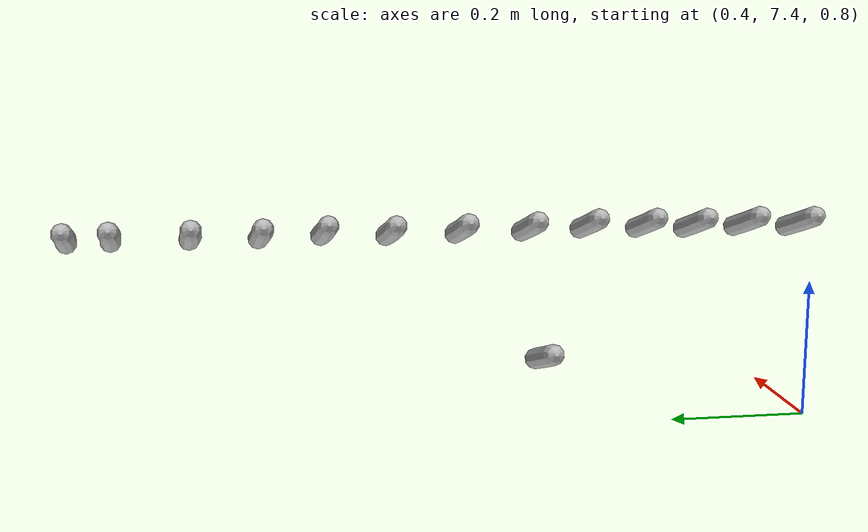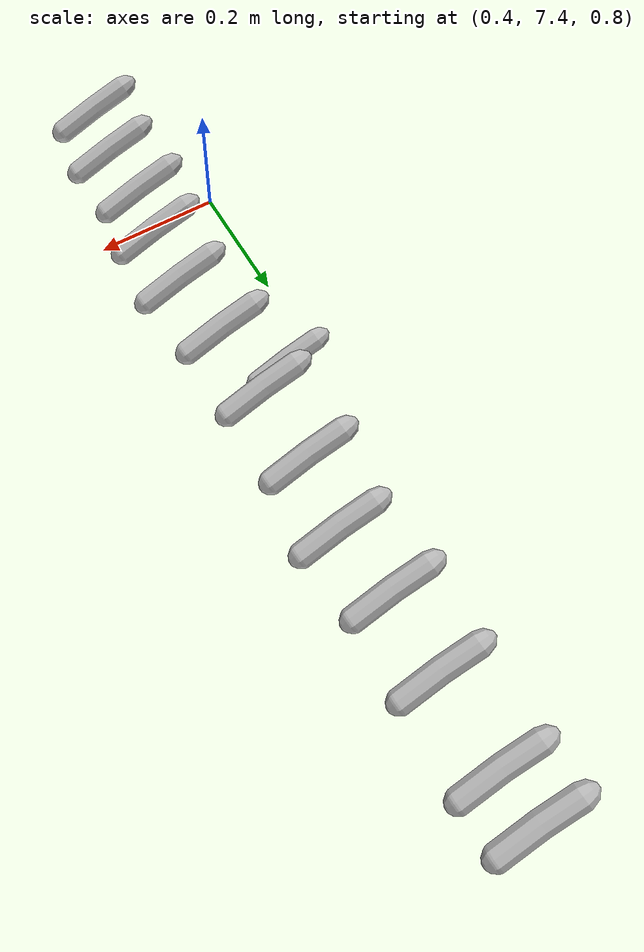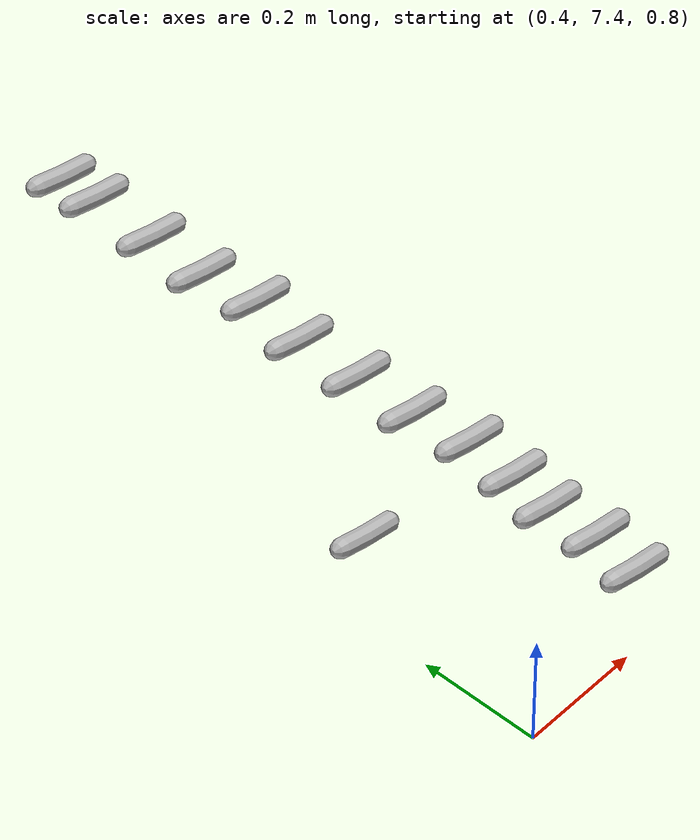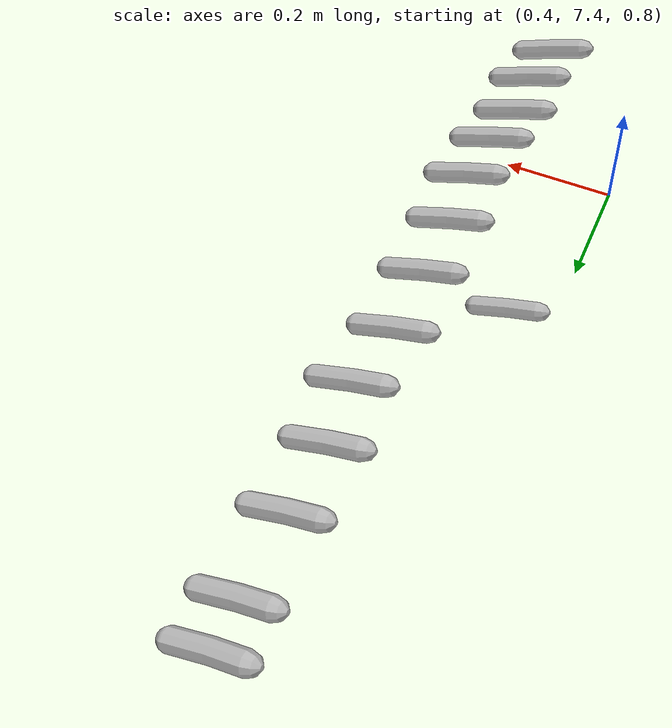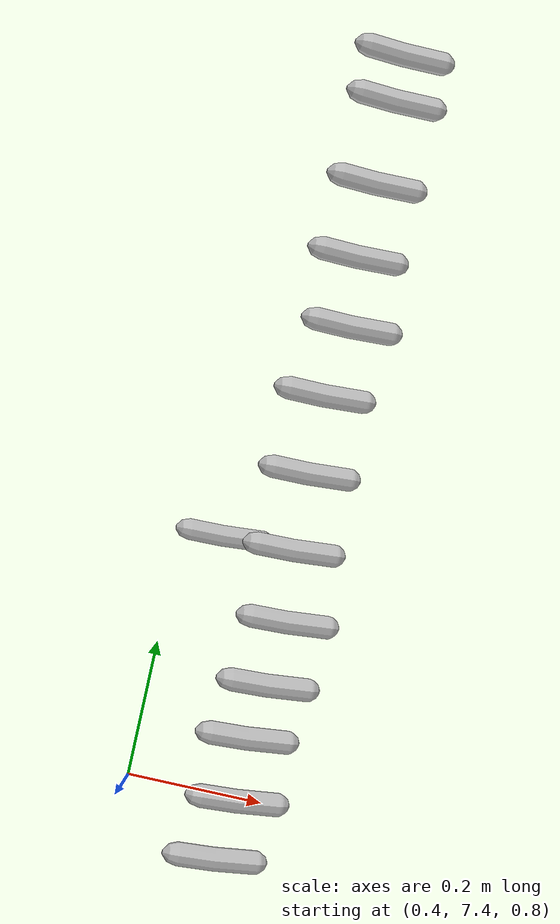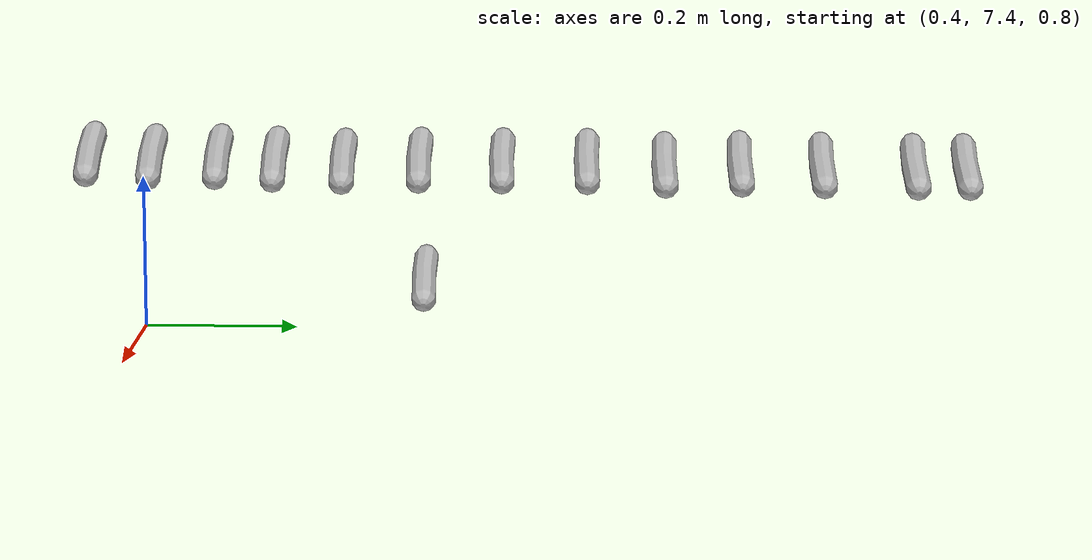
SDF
<sdf version="1.6">
 <world name="default">
  <model name="cucumber">
   <link name="link_0">
    <inertial>
     <mass>1</mass>
     <inertia>
      <ixx>0.166667</ixx>
      <ixy>0</ixy>
      <ixz>0</ixz>
      <iyy>0.166667</iyy>
      <iyz>0</iyz>
      <izz>0.166667</izz>
     </inertia>
    </inertial>
    <visual name="visual">
     <geometry><mesh><uri>model://cucumber/meshes/cucumber.dae</uri><scale>1 1 1</scale></mesh></geometry>
     <cast_shadows>0</cast_shadows>
    </visual>
    <collision name="collision">
     <geometry><mesh><uri>model://cucumber/meshes/cucumber.dae</uri><scale>1 1 1</scale></mesh></geometry>
     <surface>
      <friction>
       <ode><mu>1</mu><mu2>1</mu2><fdir1>0 0 0</fdir1><slip1>0</slip1><slip2>0</slip2></ode>
       <torsional>
        <coefficient>1</coefficient>
        <patch_radius>0</patch_radius>
        <surface_radius>0</surface_radius>
        <use_patch_radius>1</use_patch_radius>
        <ode><slip>0</slip></ode>
       </torsional>
      </friction>
      <bounce><restitution_coefficient>0</restitution_coefficient><threshold>1e+06</threshold></bounce>
      <contact>
       <collide_without_contact>0</collide_without_contact>
       <collide_without_contact_bitmask>1</collide_without_contact_bitmask>
       <collide_bitmask>1</collide_bitmask>
       <ode>
        <soft_cfm>0</soft_cfm>
        <soft_erp>0.2</soft_erp>
        <kp>1e+13</kp>
        <kd>1</kd>
        <max_vel>0.01</max_vel>
        <min_depth>0</min_depth>
       </ode>
       <bullet>
        <split_impulse>1</split_impulse>
        <split_impulse_penetration_threshold>-0.01</split_impulse_penetration_threshold>
        <soft_cfm>0</soft_cfm>
        <soft_erp>0.2</soft_erp>
        <kp>1e+13</kp>
        <kd>1</kd>
       </bullet>
      </contact>
     </surface>
    </collision>
   </link>
   <static>1</static>
   <pose>0.588443 7.57958 1.04625 0.305162 0 1.61482</pose>
  </model>
  <model name="cucumber_clone">
   <link name="link_0">
    <inertial>
     <mass>1</mass>
     <inertia>
      <ixx>0.166667</ixx>
      <ixy>0</ixy>
      <ixz>0</ixz>
      <iyy>0.166667</iyy>
      <iyz>0</iyz>
      <izz>0.166667</izz>
     </inertia>
    </inertial>
    <visual name="visual">
     <geometry><mesh><uri>model://cucumber/meshes/cucumber.dae</uri><scale>1 1 1</scale></mesh></geometry>
     <cast_shadows>0</cast_shadows>
    </visual>
    <collision name="collision">
     <geometry><mesh><uri>model://cucumber/meshes/cucumber.dae</uri><scale>1 1 1</scale></mesh></geometry>
     <surface>
      <friction>
       <ode><mu>1</mu><mu2>1</mu2><fdir1>0 0 0</fdir1><slip1>0</slip1><slip2>0</slip2></ode>
       <torsional>
        <coefficient>1</coefficient>
        <patch_radius>0</patch_radius>
        <surface_radius>0</surface_radius>
        <use_patch_radius>1</use_patch_radius>
        <ode><slip>0</slip></ode>
       </torsional>
      </friction>
      <bounce><restitution_coefficient>0</restitution_coefficient><threshold>1e+06</threshold></bounce>
      <contact>
       <collide_without_contact>0</collide_without_contact>
       <collide_without_contact_bitmask>1</collide_without_contact_bitmask>
       <collide_bitmask>1</collide_bitmask>
       <ode>
        <soft_cfm>0</soft_cfm>
        <soft_erp>0.2</soft_erp>
        <kp>1e+13</kp>
        <kd>1</kd>
        <max_vel>0.01</max_vel>
        <min_depth>0</min_depth>
       </ode>
       <bullet>
        <split_impulse>1</split_impulse>
        <split_impulse_penetration_threshold>-0.01</split_impulse_penetration_threshold>
        <soft_cfm>0</soft_cfm>
        <soft_erp>0.2</soft_erp>
        <kp>1e+13</kp>
        <kd>1</kd>
       </bullet>
      </contact>
     </surface>
    </collision>
   </link>
   <static>1</static>
   <pose>0.576521 7.5056 1.04625 0.305162 0 1.61482</pose>
  </model>
  <model name="cucumber_clone_0">
   <link name="link_0">
    <inertial>
     <mass>1</mass>
     <inertia>
      <ixx>0.166667</ixx>
      <ixy>0</ixy>
      <ixz>0</ixz>
      <iyy>0.166667</iyy>
      <iyz>0</iyz>
      <izz>0.166667</izz>
     </inertia>
    </inertial>
    <visual name="visual">
     <geometry><mesh><uri>model://cucumber/meshes/cucumber.dae</uri><scale>1 1 1</scale></mesh></geometry>
     <cast_shadows>0</cast_shadows>
    </visual>
    <collision name="collision">
     <geometry><mesh><uri>model://cucumber/meshes/cucumber.dae</uri><scale>1 1 1</scale></mesh></geometry>
     <surface>
      <friction>
       <ode><mu>1</mu><mu2>1</mu2><fdir1>0 0 0</fdir1><slip1>0</slip1><slip2>0</slip2></ode>
       <torsional>
        <coefficient>1</coefficient>
        <patch_radius>0</patch_radius>
        <surface_radius>0</surface_radius>
        <use_patch_radius>1</use_patch_radius>
        <ode><slip>0</slip></ode>
       </torsional>
      </friction>
      <bounce><restitution_coefficient>0</restitution_coefficient><threshold>1e+06</threshold></bounce>
      <contact>
       <collide_without_contact>0</collide_without_contact>
       <collide_without_contact_bitmask>1</collide_without_contact_bitmask>
       <collide_bitmask>1</collide_bitmask>
       <ode>
        <soft_cfm>0</soft_cfm>
        <soft_erp>0.2</soft_erp>
        <kp>1e+13</kp>
        <kd>1</kd>
        <max_vel>0.01</max_vel>
        <min_depth>0</min_depth>
       </ode>
       <bullet>
        <split_impulse>1</split_impulse>
        <split_impulse_penetration_threshold>-0.01</split_impulse_penetration_threshold>
        <soft_cfm>0</soft_cfm>
        <soft_erp>0.2</soft_erp>
        <kp>1e+13</kp>
        <kd>1</kd>
       </bullet>
      </contact>
     </surface>
    </collision>
   </link>
   <static>1</static>
   <pose>0.581048 7.42202 1.04625 0.305162 0 1.61482</pose>
  </model>
  <model name="cucumber_clone_1">
   <link name="link_0">
    <inertial>
     <mass>1</mass>
     <inertia>
      <ixx>0.166667</ixx>
      <ixy>0</ixy>
      <ixz>0</ixz>
      <iyy>0.166667</iyy>
      <iyz>0</iyz>
      <izz>0.166667</izz>
     </inertia>
    </inertial>
    <visual name="visual">
     <geometry><mesh><uri>model://cucumber/meshes/cucumber.dae</uri><scale>1 1 1</scale></mesh></geometry>
     <cast_shadows>0</cast_shadows>
    </visual>
    <collision name="collision">
     <geometry><mesh><uri>model://cucumber/meshes/cucumber.dae</uri><scale>1 1 1</scale></mesh></geometry>
     <surface>
      <friction>
       <ode><mu>1</mu><mu2>1</mu2><fdir1>0 0 0</fdir1><slip1>0</slip1><slip2>0</slip2></ode>
       <torsional>
        <coefficient>1</coefficient>
        <patch_radius>0</patch_radius>
        <surface_radius>0</surface_radius>
        <use_patch_radius>1</use_patch_radius>
        <ode><slip>0</slip></ode>
       </torsional>
      </friction>
      <bounce><restitution_coefficient>0</restitution_coefficient><threshold>1e+06</threshold></bounce>
      <contact>
       <collide_without_contact>0</collide_without_contact>
       <collide_without_contact_bitmask>1</collide_without_contact_bitmask>
       <collide_bitmask>1</collide_bitmask>
       <ode>
        <soft_cfm>0</soft_cfm>
        <soft_erp>0.2</soft_erp>
        <kp>1e+13</kp>
        <kd>1</kd>
        <max_vel>0.01</max_vel>
        <min_depth>0</min_depth>
       </ode>
       <bullet>
        <split_impulse>1</split_impulse>
        <split_impulse_penetration_threshold>-0.01</split_impulse_penetration_threshold>
        <soft_cfm>0</soft_cfm>
        <soft_erp>0.2</soft_erp>
        <kp>1e+13</kp>
        <kd>1</kd>
       </bullet>
      </contact>
     </surface>
    </collision>
   </link>
   <static>1</static>
   <pose>0.568139 7.34125 1.04625 0.305162 0 1.61482</pose>
  </model>
  <model name="cucumber_clone_2">
   <link name="link_0">
    <inertial>
     <mass>1</mass>
     <inertia>
      <ixx>0.166667</ixx>
      <ixy>0</ixy>
      <ixz>0</ixz>
      <iyy>0.166667</iyy>
      <iyz>0</iyz>
      <izz>0.166667</izz>
     </inertia>
    </inertial>
    <visual name="visual">
     <geometry><mesh><uri>model://cucumber/meshes/cucumber.dae</uri><scale>1 1 1</scale></mesh></geometry>
     <cast_shadows>0</cast_shadows>
    </visual>
    <collision name="collision">
     <geometry><mesh><uri>model://cucumber/meshes/cucumber.dae</uri><scale>1 1 1</scale></mesh></geometry>
     <surface>
      <friction>
       <ode><mu>1</mu><mu2>1</mu2><fdir1>0 0 0</fdir1><slip1>0</slip1><slip2>0</slip2></ode>
       <torsional>
        <coefficient>1</coefficient>
        <patch_radius>0</patch_radius>
        <surface_radius>0</surface_radius>
        <use_patch_radius>1</use_patch_radius>
        <ode><slip>0</slip></ode>
       </torsional>
      </friction>
      <bounce><restitution_coefficient>0</restitution_coefficient><threshold>1e+06</threshold></bounce>
      <contact>
       <collide_without_contact>0</collide_without_contact>
       <collide_without_contact_bitmask>1</collide_without_contact_bitmask>
       <collide_bitmask>1</collide_bitmask>
       <ode>
        <soft_cfm>0</soft_cfm>
        <soft_erp>0.2</soft_erp>
        <kp>1e+13</kp>
        <kd>1</kd>
        <max_vel>0.01</max_vel>
        <min_depth>0</min_depth>
       </ode>
       <bullet>
        <split_impulse>1</split_impulse>
        <split_impulse_penetration_threshold>-0.01</split_impulse_penetration_threshold>
        <soft_cfm>0</soft_cfm>
        <soft_erp>0.2</soft_erp>
        <kp>1e+13</kp>
        <kd>1</kd>
       </bullet>
      </contact>
     </surface>
    </collision>
   </link>
   <static>1</static>
   <pose>0.596197 7.6669 1.04625 0.305162 0 1.61482</pose>
  </model>
  <model name="cucumber_clone_3">
   <link name="link_0">
    <inertial>
     <mass>1</mass>
     <inertia>
      <ixx>0.166667</ixx>
      <ixy>0</ixy>
      <ixz>0</ixz>
      <iyy>0.166667</iyy>
      <iyz>0</iyz>
      <izz>0.166667</izz>
     </inertia>
    </inertial>
    <visual name="visual">
     <geometry><mesh><uri>model://cucumber/meshes/cucumber.dae</uri><scale>1 1 1</scale></mesh></geometry>
     <cast_shadows>0</cast_shadows>
    </visual>
    <collision name="collision">
     <geometry><mesh><uri>model://cucumber/meshes/cucumber.dae</uri><scale>1 1 1</scale></mesh></geometry>
     <surface>
      <friction>
       <ode><mu>1</mu><mu2>1</mu2><fdir1>0 0 0</fdir1><slip1>0</slip1><slip2>0</slip2></ode>
       <torsional>
        <coefficient>1</coefficient>
        <patch_radius>0</patch_radius>
        <surface_radius>0</surface_radius>
        <use_patch_radius>1</use_patch_radius>
        <ode><slip>0</slip></ode>
       </torsional>
      </friction>
      <bounce><restitution_coefficient>0</restitution_coefficient><threshold>1e+06</threshold></bounce>
      <contact>
       <collide_without_contact>0</collide_without_contact>
       <collide_without_contact_bitmask>1</collide_without_contact_bitmask>
       <collide_bitmask>1</collide_bitmask>
       <ode>
        <soft_cfm>0</soft_cfm>
        <soft_erp>0.2</soft_erp>
        <kp>1e+13</kp>
        <kd>1</kd>
        <max_vel>0.01</max_vel>
        <min_depth>0</min_depth>
       </ode>
       <bullet>
        <split_impulse>1</split_impulse>
        <split_impulse_penetration_threshold>-0.01</split_impulse_penetration_threshold>
        <soft_cfm>0</soft_cfm>
        <soft_erp>0.2</soft_erp>
        <kp>1e+13</kp>
        <kd>1</kd>
       </bullet>
      </contact>
     </surface>
    </collision>
   </link>
   <static>1</static>
   <pose>0.584535 7.76238 1.04625 0.305162 0 1.61482</pose>
  </model>
  <model name="cucumber_clone_4">
   <link name="link_0">
    <inertial>
     <mass>1</mass>
     <inertia>
      <ixx>0.166667</ixx>
      <ixy>0</ixy>
      <ixz>0</ixz>
      <iyy>0.166667</iyy>
      <iyz>0</iyz>
      <izz>0.166667</izz>
     </inertia>
    </inertial>
    <visual name="visual">
     <geometry><mesh><uri>model://cucumber/meshes/cucumber.dae</uri><scale>1 1 1</scale></mesh></geometry>
     <cast_shadows>0</cast_shadows>
    </visual>
    <collision name="collision">
     <geometry><mesh><uri>model://cucumber/meshes/cucumber.dae</uri><scale>1 1 1</scale></mesh></geometry>
     <surface>
      <friction>
       <ode><mu>1</mu><mu2>1</mu2><fdir1>0 0 0</fdir1><slip1>0</slip1><slip2>0</slip2></ode>
       <torsional>
        <coefficient>1</coefficient>
        <patch_radius>0</patch_radius>
        <surface_radius>0</surface_radius>
        <use_patch_radius>1</use_patch_radius>
        <ode><slip>0</slip></ode>
       </torsional>
      </friction>
      <bounce><restitution_coefficient>0</restitution_coefficient><threshold>1e+06</threshold></bounce>
      <contact>
       <collide_without_contact>0</collide_without_contact>
       <collide_without_contact_bitmask>1</collide_without_contact_bitmask>
       <collide_bitmask>1</collide_bitmask>
       <ode>
        <soft_cfm>0</soft_cfm>
        <soft_erp>0.2</soft_erp>
        <kp>1e+13</kp>
        <kd>1</kd>
        <max_vel>0.01</max_vel>
        <min_depth>0</min_depth>
       </ode>
       <bullet>
        <split_impulse>1</split_impulse>
        <split_impulse_penetration_threshold>-0.01</split_impulse_penetration_threshold>
        <soft_cfm>0</soft_cfm>
        <soft_erp>0.2</soft_erp>
        <kp>1e+13</kp>
        <kd>1</kd>
       </bullet>
      </contact>
     </surface>
    </collision>
   </link>
   <static>1</static>
   <pose>0.58295 7.86666 1.04625 0.305162 0 1.61482</pose>
  </model>
  <model name="cucumber_clone_5">
   <link name="link_0">
    <inertial>
     <mass>1</mass>
     <inertia>
      <ixx>0.166667</ixx>
      <ixy>0</ixy>
      <ixz>0</ixz>
      <iyy>0.166667</iyy>
      <iyz>0</iyz>
      <izz>0.166667</izz>
     </inertia>
    </inertial>
    <visual name="visual">
     <geometry><mesh><uri>model://cucumber/meshes/cucumber.dae</uri><scale>1 1 1</scale></mesh></geometry>
     <cast_shadows>0</cast_shadows>
    </visual>
    <collision name="collision">
     <geometry><mesh><uri>model://cucumber/meshes/cucumber.dae</uri><scale>1 1 1</scale></mesh></geometry>
     <surface>
      <friction>
       <ode><mu>1</mu><mu2>1</mu2><fdir1>0 0 0</fdir1><slip1>0</slip1><slip2>0</slip2></ode>
       <torsional>
        <coefficient>1</coefficient>
        <patch_radius>0</patch_radius>
        <surface_radius>0</surface_radius>
        <use_patch_radius>1</use_patch_radius>
        <ode><slip>0</slip></ode>
       </torsional>
      </friction>
      <bounce><restitution_coefficient>0</restitution_coefficient><threshold>1e+06</threshold></bounce>
      <contact>
       <collide_without_contact>0</collide_without_contact>
       <collide_without_contact_bitmask>1</collide_without_contact_bitmask>
       <collide_bitmask>1</collide_bitmask>
       <ode>
        <soft_cfm>0</soft_cfm>
        <soft_erp>0.2</soft_erp>
        <kp>1e+13</kp>
        <kd>1</kd>
        <max_vel>0.01</max_vel>
        <min_depth>0</min_depth>
       </ode>
       <bullet>
        <split_impulse>1</split_impulse>
        <split_impulse_penetration_threshold>-0.01</split_impulse_penetration_threshold>
        <soft_cfm>0</soft_cfm>
        <soft_erp>0.2</soft_erp>
        <kp>1e+13</kp>
        <kd>1</kd>
       </bullet>
      </contact>
     </surface>
    </collision>
   </link>
   <static>1</static>
   <pose>0.580998 7.97345 1.04625 0.305162 0 1.61482</pose>
  </model>
  <model name="cucumber_clone_6">
   <link name="link_0">
    <inertial>
     <mass>1</mass>
     <inertia>
      <ixx>0.166667</ixx>
      <ixy>0</ixy>
      <ixz>0</ixz>
      <iyy>0.166667</iyy>
      <iyz>0</iyz>
      <izz>0.166667</izz>
     </inertia>
    </inertial>
    <visual name="visual">
     <geometry><mesh><uri>model://cucumber/meshes/cucumber.dae</uri><scale>1 1 1</scale></mesh></geometry>
     <cast_shadows>0</cast_shadows>
    </visual>
    <collision name="collision">
     <geometry><mesh><uri>model://cucumber/meshes/cucumber.dae</uri><scale>1 1 1</scale></mesh></geometry>
     <surface>
      <friction>
       <ode><mu>1</mu><mu2>1</mu2><fdir1>0 0 0</fdir1><slip1>0</slip1><slip2>0</slip2></ode>
       <torsional>
        <coefficient>1</coefficient>
        <patch_radius>0</patch_radius>
        <surface_radius>0</surface_radius>
        <use_patch_radius>1</use_patch_radius>
        <ode><slip>0</slip></ode>
       </torsional>
      </friction>
      <bounce><restitution_coefficient>0</restitution_coefficient><threshold>1e+06</threshold></bounce>
      <contact>
       <collide_without_contact>0</collide_without_contact>
       <collide_without_contact_bitmask>1</collide_without_contact_bitmask>
       <collide_bitmask>1</collide_bitmask>
       <ode>
        <soft_cfm>0</soft_cfm>
        <soft_erp>0.2</soft_erp>
        <kp>1e+13</kp>
        <kd>1</kd>
        <max_vel>0.01</max_vel>
        <min_depth>0</min_depth>
       </ode>
       <bullet>
        <split_impulse>1</split_impulse>
        <split_impulse_penetration_threshold>-0.01</split_impulse_penetration_threshold>
        <soft_cfm>0</soft_cfm>
        <soft_erp>0.2</soft_erp>
        <kp>1e+13</kp>
        <kd>1</kd>
       </bullet>
      </contact>
     </surface>
    </collision>
   </link>
   <static>1</static>
   <pose>0.596631 8.07136 1.04625 0.305162 0 1.61482</pose>
  </model>
  <model name="cucumber_clone_7">
   <link name="link_0">
    <inertial>
     <mass>1</mass>
     <inertia>
      <ixx>0.166667</ixx>
      <ixy>0</ixy>
      <ixz>0</ixz>
      <iyy>0.166667</iyy>
      <iyz>0</iyz>
      <izz>0.166667</izz>
     </inertia>
    </inertial>
    <visual name="visual">
     <geometry><mesh><uri>model://cucumber/meshes/cucumber.dae</uri><scale>1 1 1</scale></mesh></geometry>
     <cast_shadows>0</cast_shadows>
    </visual>
    <collision name="collision">
     <geometry><mesh><uri>model://cucumber/meshes/cucumber.dae</uri><scale>1 1 1</scale></mesh></geometry>
     <surface>
      <friction>
       <ode><mu>1</mu><mu2>1</mu2><fdir1>0 0 0</fdir1><slip1>0</slip1><slip2>0</slip2></ode>
       <torsional>
        <coefficient>1</coefficient>
        <patch_radius>0</patch_radius>
        <surface_radius>0</surface_radius>
        <use_patch_radius>1</use_patch_radius>
        <ode><slip>0</slip></ode>
       </torsional>
      </friction>
      <bounce><restitution_coefficient>0</restitution_coefficient><threshold>1e+06</threshold></bounce>
      <contact>
       <collide_without_contact>0</collide_without_contact>
       <collide_without_contact_bitmask>1</collide_without_contact_bitmask>
       <collide_bitmask>1</collide_bitmask>
       <ode>
        <soft_cfm>0</soft_cfm>
        <soft_erp>0.2</soft_erp>
        <kp>1e+13</kp>
        <kd>1</kd>
        <max_vel>0.01</max_vel>
        <min_depth>0</min_depth>
       </ode>
       <bullet>
        <split_impulse>1</split_impulse>
        <split_impulse_penetration_threshold>-0.01</split_impulse_penetration_threshold>
        <soft_cfm>0</soft_cfm>
        <soft_erp>0.2</soft_erp>
        <kp>1e+13</kp>
        <kd>1</kd>
       </bullet>
      </contact>
     </surface>
    </collision>
   </link>
   <static>1</static>
   <pose>0.585042 8.16595 1.04625 0.305162 0 1.61482</pose>
  </model>
  <model name="cucumber_clone_8">
   <link name="link_0">
    <inertial>
     <mass>1</mass>
     <inertia>
      <ixx>0.166667</ixx>
      <ixy>0</ixy>
      <ixz>0</ixz>
      <iyy>0.166667</iyy>
      <iyz>0</iyz>
      <izz>0.166667</izz>
     </inertia>
    </inertial>
    <visual name="visual">
     <geometry><mesh><uri>model://cucumber/meshes/cucumber.dae</uri><scale>1 1 1</scale></mesh></geometry>
     <cast_shadows>0</cast_shadows>
    </visual>
    <collision name="collision">
     <geometry><mesh><uri>model://cucumber/meshes/cucumber.dae</uri><scale>1 1 1</scale></mesh></geometry>
     <surface>
      <friction>
       <ode><mu>1</mu><mu2>1</mu2><fdir1>0 0 0</fdir1><slip1>0</slip1><slip2>0</slip2></ode>
       <torsional>
        <coefficient>1</coefficient>
        <patch_radius>0</patch_radius>
        <surface_radius>0</surface_radius>
        <use_patch_radius>1</use_patch_radius>
        <ode><slip>0</slip></ode>
       </torsional>
      </friction>
      <bounce><restitution_coefficient>0</restitution_coefficient><threshold>1e+06</threshold></bounce>
      <contact>
       <collide_without_contact>0</collide_without_contact>
       <collide_without_contact_bitmask>1</collide_without_contact_bitmask>
       <collide_bitmask>1</collide_bitmask>
       <ode>
        <soft_cfm>0</soft_cfm>
        <soft_erp>0.2</soft_erp>
        <kp>1e+13</kp>
        <kd>1</kd>
        <max_vel>0.01</max_vel>
        <min_depth>0</min_depth>
       </ode>
       <bullet>
        <split_impulse>1</split_impulse>
        <split_impulse_penetration_threshold>-0.01</split_impulse_penetration_threshold>
        <soft_cfm>0</soft_cfm>
        <soft_erp>0.2</soft_erp>
        <kp>1e+13</kp>
        <kd>1</kd>
       </bullet>
      </contact>
     </surface>
    </collision>
   </link>
   <static>1</static>
   <pose>0.588955 8.26844 1.04625 0.305162 0 1.61482</pose>
  </model>
  <model name="cucumber_clone_9">
   <link name="link_0">
    <inertial>
     <mass>1</mass>
     <inertia>
      <ixx>0.166667</ixx>
      <ixy>0</ixy>
      <ixz>0</ixz>
      <iyy>0.166667</iyy>
      <iyz>0</iyz>
      <izz>0.166667</izz>
     </inertia>
    </inertial>
    <visual name="visual">
     <geometry><mesh><uri>model://cucumber/meshes/cucumber.dae</uri><scale>1 1 1</scale></mesh></geometry>
     <cast_shadows>0</cast_shadows>
    </visual>
    <collision name="collision">
     <geometry><mesh><uri>model://cucumber/meshes/cucumber.dae</uri><scale>1 1 1</scale></mesh></geometry>
     <surface>
      <friction>
       <ode><mu>1</mu><mu2>1</mu2><fdir1>0 0 0</fdir1><slip1>0</slip1><slip2>0</slip2></ode>
       <torsional>
        <coefficient>1</coefficient>
        <patch_radius>0</patch_radius>
        <surface_radius>0</surface_radius>
        <use_patch_radius>1</use_patch_radius>
        <ode><slip>0</slip></ode>
       </torsional>
      </friction>
      <bounce><restitution_coefficient>0</restitution_coefficient><threshold>1e+06</threshold></bounce>
      <contact>
       <collide_without_contact>0</collide_without_contact>
       <collide_without_contact_bitmask>1</collide_without_contact_bitmask>
       <collide_bitmask>1</collide_bitmask>
       <ode>
        <soft_cfm>0</soft_cfm>
        <soft_erp>0.2</soft_erp>
        <kp>1e+13</kp>
        <kd>1</kd>
        <max_vel>0.01</max_vel>
        <min_depth>0</min_depth>
       </ode>
       <bullet>
        <split_impulse>1</split_impulse>
        <split_impulse_penetration_threshold>-0.01</split_impulse_penetration_threshold>
        <soft_cfm>0</soft_cfm>
        <soft_erp>0.2</soft_erp>
        <kp>1e+13</kp>
        <kd>1</kd>
       </bullet>
      </contact>
     </surface>
    </collision>
   </link>
   <static>1</static>
   <pose>0.591171 8.38375 1.04625 0.305162 0 1.61482</pose>
  </model>
  <model name="cucumber_clone_10">
   <link name="link_0">
    <inertial>
     <mass>1</mass>
     <inertia>
      <ixx>0.166667</ixx>
      <ixy>0</ixy>
      <ixz>0</ixz>
      <iyy>0.166667</iyy>
      <iyz>0</iyz>
      <izz>0.166667</izz>
     </inertia>
    </inertial>
    <visual name="visual">
     <geometry><mesh><uri>model://cucumber/meshes/cucumber.dae</uri><scale>1 1 1</scale></mesh></geometry>
     <cast_shadows>0</cast_shadows>
    </visual>
    <collision name="collision">
     <geometry><mesh><uri>model://cucumber/meshes/cucumber.dae</uri><scale>1 1 1</scale></mesh></geometry>
     <surface>
      <friction>
       <ode><mu>1</mu><mu2>1</mu2><fdir1>0 0 0</fdir1><slip1>0</slip1><slip2>0</slip2></ode>
       <torsional>
        <coefficient>1</coefficient>
        <patch_radius>0</patch_radius>
        <surface_radius>0</surface_radius>
        <use_patch_radius>1</use_patch_radius>
        <ode><slip>0</slip></ode>
       </torsional>
      </friction>
      <bounce><restitution_coefficient>0</restitution_coefficient><threshold>1e+06</threshold></bounce>
      <contact>
       <collide_without_contact>0</collide_without_contact>
       <collide_without_contact_bitmask>1</collide_without_contact_bitmask>
       <collide_bitmask>1</collide_bitmask>
       <ode>
        <soft_cfm>0</soft_cfm>
        <soft_erp>0.2</soft_erp>
        <kp>1e+13</kp>
        <kd>1</kd>
        <max_vel>0.01</max_vel>
        <min_depth>0</min_depth>
       </ode>
       <bullet>
        <split_impulse>1</split_impulse>
        <split_impulse_penetration_threshold>-0.01</split_impulse_penetration_threshold>
        <soft_cfm>0</soft_cfm>
        <soft_erp>0.2</soft_erp>
        <kp>1e+13</kp>
        <kd>1</kd>
       </bullet>
      </contact>
     </surface>
    </collision>
   </link>
   <static>1</static>
   <pose>0.588802 8.44777 1.04625 0.305162 0 1.61482</pose>
  </model>
  <model name="cucumber_clone_11_clone_11_clone_7_clone_1">
   <link name="link_0">
    <inertial>
     <mass>1</mass>
     <inertia>
      <ixx>0.166667</ixx>
      <ixy>0</ixy>
      <ixz>0</ixz>
      <iyy>0.166667</iyy>
      <iyz>0</iyz>
      <izz>0.166667</izz>
     </inertia>
    </inertial>
    <visual name="visual">
     <geometry><mesh><uri>model://cucumber/meshes/cucumber.dae</uri><scale>1 1 1</scale></mesh></geometry>
     <cast_shadows>0</cast_shadows>
    </visual>
    <collision name="collision">
     <geometry><mesh><uri>model://cucumber/meshes/cucumber.dae</uri><scale>1 1 1</scale></mesh></geometry>
     <surface>
      <friction>
       <ode><mu>1</mu><mu2>1</mu2><fdir1>0 0 0</fdir1><slip1>0</slip1><slip2>0</slip2></ode>
       <torsional>
        <coefficient>1</coefficient>
        <patch_radius>0</patch_radius>
        <surface_radius>0</surface_radius>
        <use_patch_radius>1</use_patch_radius>
        <ode><slip>0</slip></ode>
       </torsional>
      </friction>
      <bounce><restitution_coefficient>0</restitution_coefficient><threshold>1e+06</threshold></bounce>
      <contact>
       <collide_without_contact>0</collide_without_contact>
       <collide_without_contact_bitmask>1</collide_without_contact_bitmask>
       <collide_bitmask>1</collide_bitmask>
       <ode>
        <soft_cfm>0</soft_cfm>
        <soft_erp>0.2</soft_erp>
        <kp>1e+13</kp>
        <kd>1</kd>
        <max_vel>0.01</max_vel>
        <min_depth>0</min_depth>
       </ode>
       <bullet>
        <split_impulse>1</split_impulse>
        <split_impulse_penetration_threshold>-0.01</split_impulse_penetration_threshold>
        <soft_cfm>0</soft_cfm>
        <soft_erp>0.2</soft_erp>
        <kp>1e+13</kp>
        <kd>1</kd>
       </bullet>
      </contact>
     </surface>
    </collision>
   </link>
   <static>1</static>
   <pose>0.483382 7.75976 0.869908 0.305162 0 1.61482</pose>
  </model>
 </world>
</sdf>
